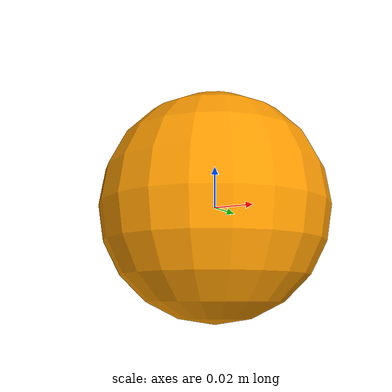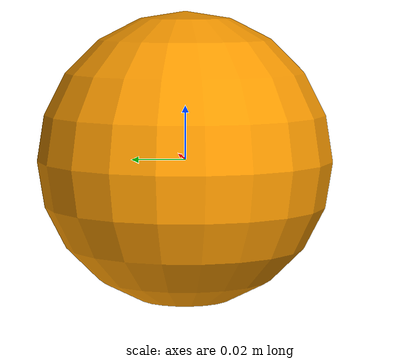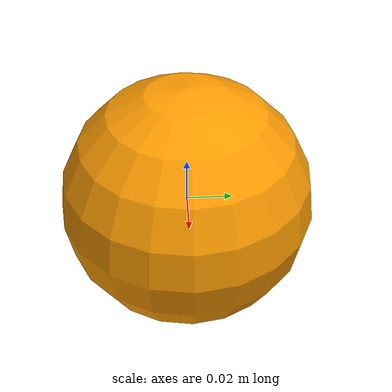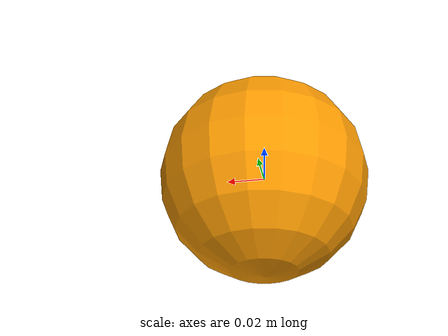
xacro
<?xml version="1.0" ?>
<robot name="ball" xmlns:xacro="http://www.ros.org/wiki/xacro">

    <!-- XACRO Properties -->
    <xacro:property name="radius" value="0.055"/>
    <xacro:property name="mass" value="0.057"/>

    <link name="base_link">

        <inertial> <!-- Inertia from https://en.wikipedia.org/wiki/List_of_moments_of_inertia#List_of_3D_inertia_tensors -->
            <mass value="${mass}"/>
            <inertia ixx="${(2/5)*mass*radius*radius}" ixy="0" ixz="0"
                     iyy="${(2/5)*mass*radius*radius}" iyz="0"
                     izz="${(2/5)*mass*radius*radius}"/>
        </inertial>

        <visual>
            <geometry>
                <sphere radius="${radius}"/>
            </geometry>
            <material name="orange">
                <color rgba="0.975 0.6 0. 1"/>
            </material>
        </visual>

        <collision>
            <geometry>
                <sphere radius="${radius}"/>
            </geometry>
            <contact_coefficients mu="0.4" kp="45000" kd="19"/>
        </collision>

    </link>
</robot>
